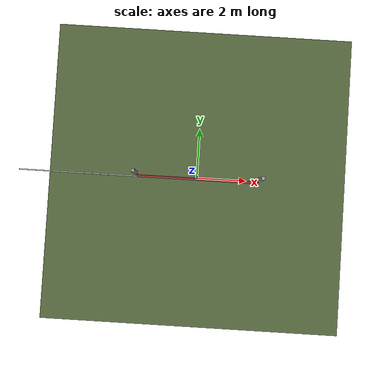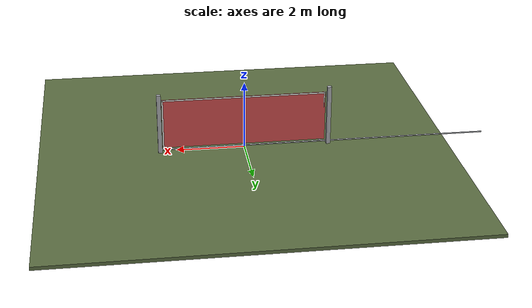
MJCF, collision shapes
<?xml version="1.0" ?>
<mujoco model="db0309_gate_sliding_simple">
  <compiler angle="radian" meshdir="../../hardware" texturedir="../../textures" autolimits="true" inertiafromgeom="false"/>
  <option timestep="0.002" integrator="implicitfast" cone="elliptic" impratio="10" noslip_iterations="3">
    <flag multiccd="enable"/>
  </option>
  <size memory="16M"/>
  <default>
    <geom condim="4" solref="0.005 1" solimp="0.95 0.99 0.001"/>
    <joint solreflimit="0.005 1" solimplimit="0.95 0.99 0.001"/>
    <tendon solreflimit="0.005 1"/>
    <equality solref="0.002 1"/>
  </default>
  <visual>
    <headlight ambient="0.4 0.4 0.4" diffuse="0.7 0.7 0.7" specular="0.2 0.2 0.2"/>
    <quality shadowsize="4096"/>
    <map znear="0.01" zfar="60"/>
  </visual>
  <asset>
    <mesh name="pull_1e5d69a91a" file="pull_1e5d69a91a.obj"/>
    <material name="mat_floor" rgba="0.35 0.42 0.25 1" specular="0.2" shininess="0.15" reflectance="0"/>
    <material name="mat_wall" rgba="0.78 0.76 0.7 1" specular="0.2" shininess="0.1" reflectance="0"/>
    <material name="mat_frame" rgba="0.65 0.66 0.68 1" specular="0.74" shininess="0.5" reflectance="0.36"/>
    <material name="mat_track" rgba="0.8 0.81 0.83 1" specular="0.8" shininess="0.6" reflectance="0.4"/>
    <material name="mat_leaf" rgba="0.93 0.93 0.91 1" specular="0.23" shininess="0.5" reflectance="0.02"/>
    <material name="mat_mesh_infill" rgba="0.6 0.62 0.64 0.55" specular="0.68" shininess="0.3" reflectance="0.1"/>
    <material name="mat_roller" rgba="0.65 0.66 0.68 1" specular="0.74" shininess="0.5" reflectance="0.36"/>
    <material name="mat_op_stainless" rgba="0.75 0.76 0.77 1" specular="0.8" shininess="0.65" reflectance="0.4"/>
    <material name="mat_hook" rgba="0.75 0.76 0.77 1" specular="0.8" shininess="0.65" reflectance="0.4"/>
    <texture name="skybox" type="skybox" builtin="gradient" rgb1="0.6 0.7 0.85" rgb2="0.9 0.92 0.95" width="256" height="256"/>
  </asset>
  <worldbody>
    <light name="sun" pos="1.5 -2.5 4" dir="-0.3 0.5 -0.8" directional="true" diffuse="0.8 0.8 0.8" specular="0.3 0.3 0.3" castshadow="true"/>
    <light name="fill" pos="-1.5 2.5 3" dir="0.3 -0.5 -0.7" directional="true" diffuse="0.35 0.35 0.4" castshadow="false"/>
    <camera name="robot_view" pos="0 -5.171875 2.223125" xyaxes="1 0 0 0 0.26963 0.962964" fovy="52"/>
    <camera name="far_view" pos="0 5.171875 2.223125" xyaxes="-1 0 0 0 -0.26963 0.962964" fovy="52"/>
    <camera name="iso" pos="3.930625 -4.344375 3.050625" xyaxes="0.741536 0.670913 0 -0.242917 0.268487 0.932151" fovy="46"/>
    <camera name="detail_handle" pos="2.56 -1.2325 1.35" xyaxes="0.975133 0.221621 0 -0.065674 0.288965 0.955084" fovy="38"/>
    <geom name="floor" type="box" size="6 6 0.05" pos="0 0 -0.05" material="mat_floor" group="0" contype="1" conaffinity="1" friction="0.8 0.005 0.0001" density="2400"/>
    <geom name="post_l" type="box" size="0.06 0.06 0.9" pos="-2.485 0.08 0.9" material="mat_frame" group="0" contype="1" conaffinity="1" friction="0.6 0.005 0.0001" density="7850"/>
    <geom name="post_r" type="box" size="0.06 0.06 0.9" pos="2.485 0.08 0.9" material="mat_frame" group="0" contype="1" conaffinity="1" friction="0.6 0.005 0.0001" density="7850"/>
    <geom name="gate_rail" type="box" size="4.85 0.02 0.012" pos="-2.4 -0.06 0.012" material="mat_track" group="0" contype="1" conaffinity="1" friction="0.6 0.005 0.0001" density="2700"/>
    <site name="approach_point" pos="0 -1.5 0" quat="1 0 0 0" size="0.05" rgba="0.2 0.9 0.2 0.5" group="4"/>
    <site name="goal_point" pos="0 1.5 0" quat="1 0 0 0" size="0.05" rgba="0.2 0.9 0.2 0.5" group="4"/>
    <site name="door_plane_center" pos="0 0 0.775" quat="1 0 0 0" size="0.02" rgba="0.2 0.9 0.2 0.5" group="4"/>
    <body name="leaf" pos="0 -0.06 0">
      <inertial pos="0.00315 -0.00009 0.82716" mass="312.44" quat="0.707136 -0.707078 -0.000103 -0.000178" diaginertia="59.034253557 605.22703563 664.224996731"/>
      <joint name="leaf_slide" type="slide" axis="-1 0 0" limited="true" range="0 4.8" damping="17.622" frictionloss="367.678767" armature="0.5"/>
      <geom name="leaf_slab_col" type="box" size="2.4 0.0125 0.75" pos="0 0 0.83" material="mat_leaf" group="3" contype="1" conaffinity="1" rgba="0.8 0.3 0.3 0.25" friction="0.45 0.005 0.0001" density="1"/>
      <geom name="leaf_rail_b" type="box" size="2.4 0.0125 0.0225" pos="0 0 0.1025" material="mat_leaf" group="1" contype="0" conaffinity="0" density="1"/>
      <geom name="leaf_rail_t" type="box" size="2.4 0.0125 0.0225" pos="0 0 1.5575" material="mat_leaf" group="1" contype="0" conaffinity="0" density="1"/>
      <geom name="leaf_stile_h" type="box" size="0.0225 0.0125 0.75" pos="-2.3775 0 0.83" material="mat_leaf" group="1" contype="0" conaffinity="0" density="1"/>
      <geom name="leaf_stile_l" type="box" size="0.0225 0.0125 0.75" pos="2.3775 0 0.83" material="mat_leaf" group="1" contype="0" conaffinity="0" density="1"/>
      <geom name="leaf_mesh" type="box" size="2.355 0.0015 0.705" pos="0 0 0.83" material="mat_mesh_infill" group="1" contype="0" conaffinity="0" density="1"/>
      <geom name="leaf_roller_0" type="cylinder" size="0.04 0.008" pos="-2.26 0 0.064" quat="0.707107 -0.707107 0 0" material="mat_roller" group="1" contype="0" conaffinity="0" density="7850"/>
      <geom name="leaf_roller_1" type="cylinder" size="0.04 0.008" pos="2.18 0 0.064" quat="0.707107 -0.707107 0 0" material="mat_roller" group="1" contype="0" conaffinity="0" density="7850"/>
      <geom name="leaf_pull_n" type="mesh" mesh="pull_1e5d69a91a" pos="2.31 -0.0125 1" quat="0.707107 0.707107 0 0" material="mat_op_stainless" group="1" contype="0" conaffinity="0" density="3000"/>
      <geom name="leaf_pull_col_n" type="capsule" size="0.0095 0.08" pos="2.31 -0.0725 1" material="mat_op_stainless" group="3" contype="1" conaffinity="1" rgba="0.8 0.3 0.3 0.25" friction="0.7 0.01 0.0001" density="3000"/>
      <site name="leaf_pull_grip_n" pos="2.31 -0.0725 1" quat="1 0 0 0" size="0.012" rgba="0.2 0.9 0.2 0.5" group="4"/>
      <site name="leaf_edge_mid" pos="2.4 0 0.83" quat="1 0 0 0" size="0.02" rgba="0.2 0.9 0.2 0.5" group="4"/>
    </body>
  </worldbody>
  <sensor>
    <jointpos name="leaf_slide_pos" joint="leaf_slide"/>
    <jointvel name="leaf_slide_vel" joint="leaf_slide"/>
  </sensor>
</mujoco>
